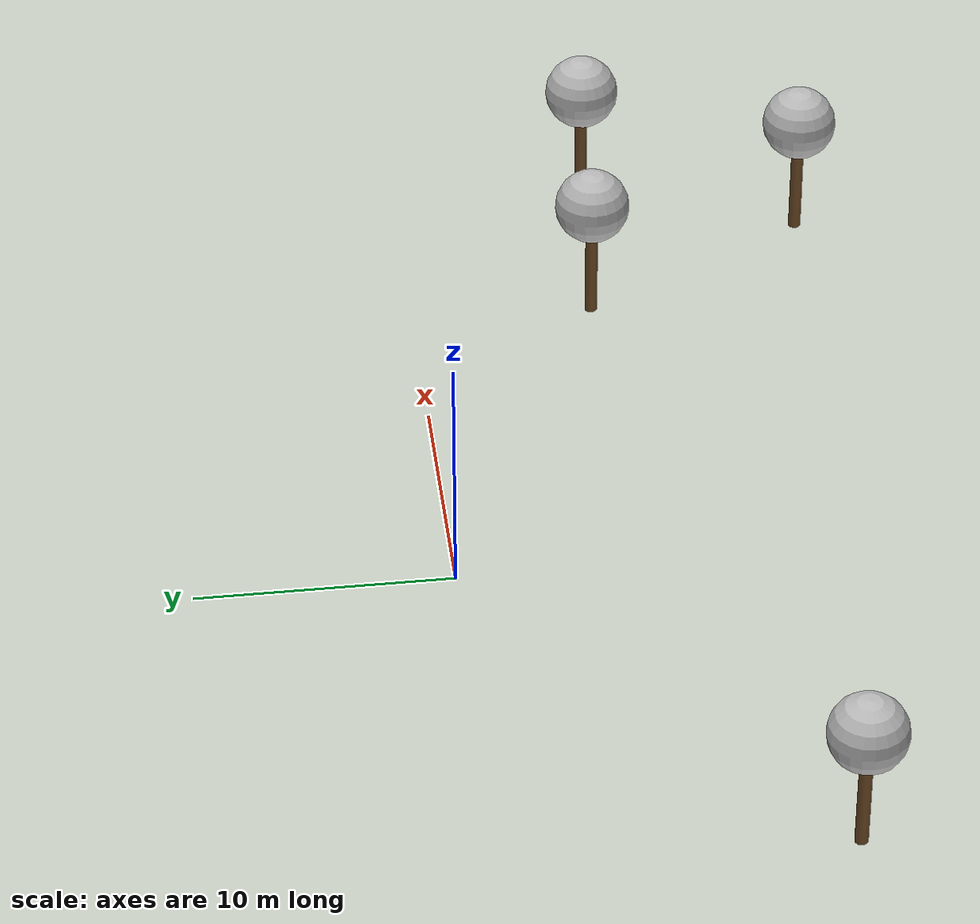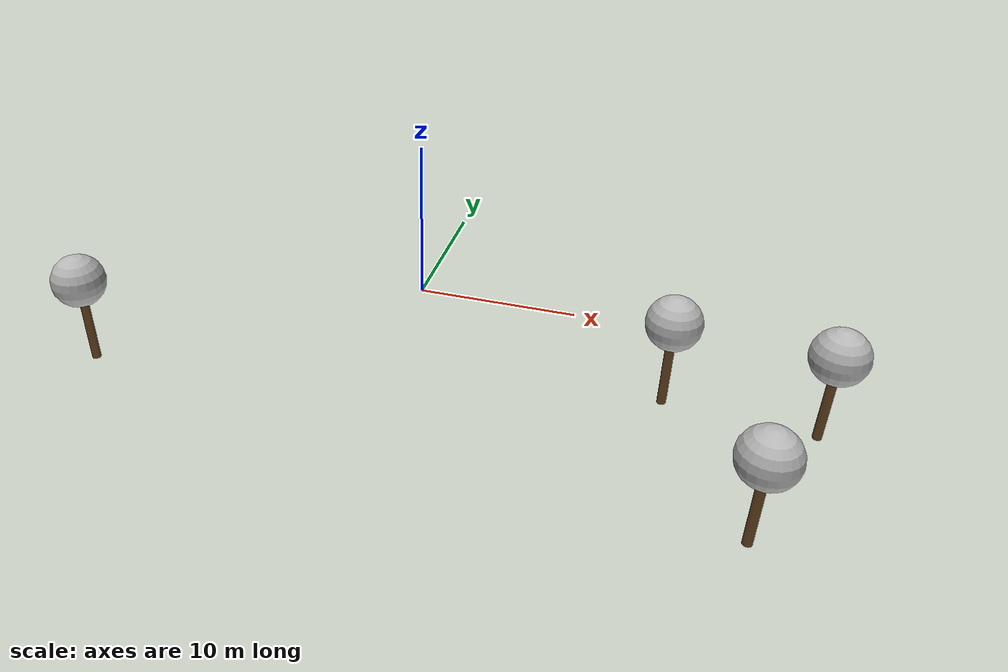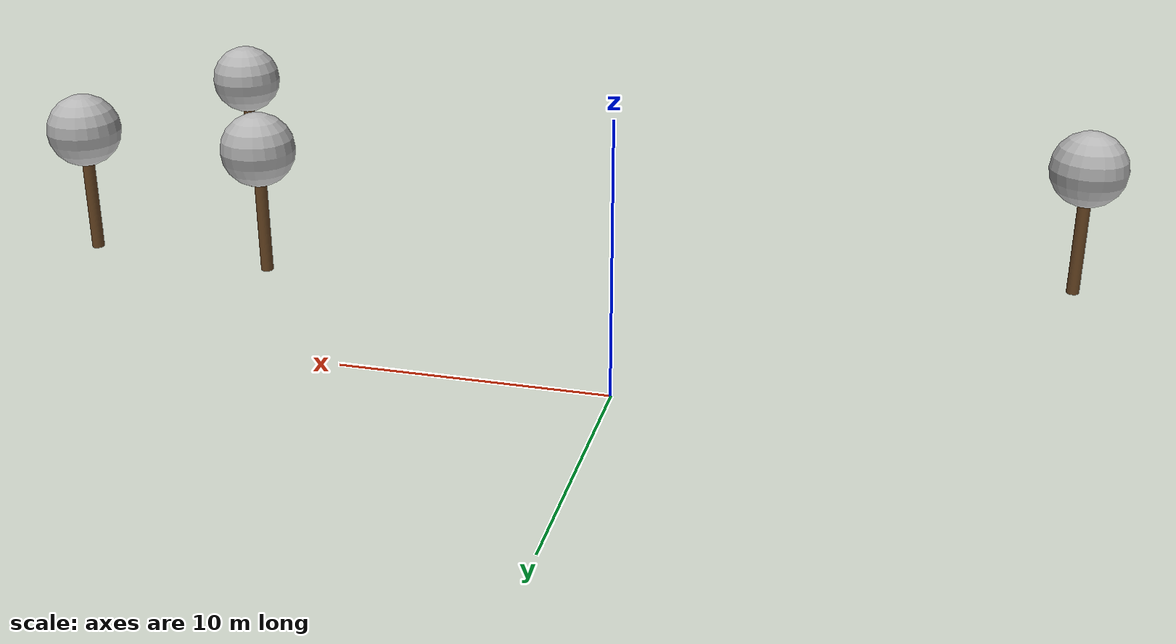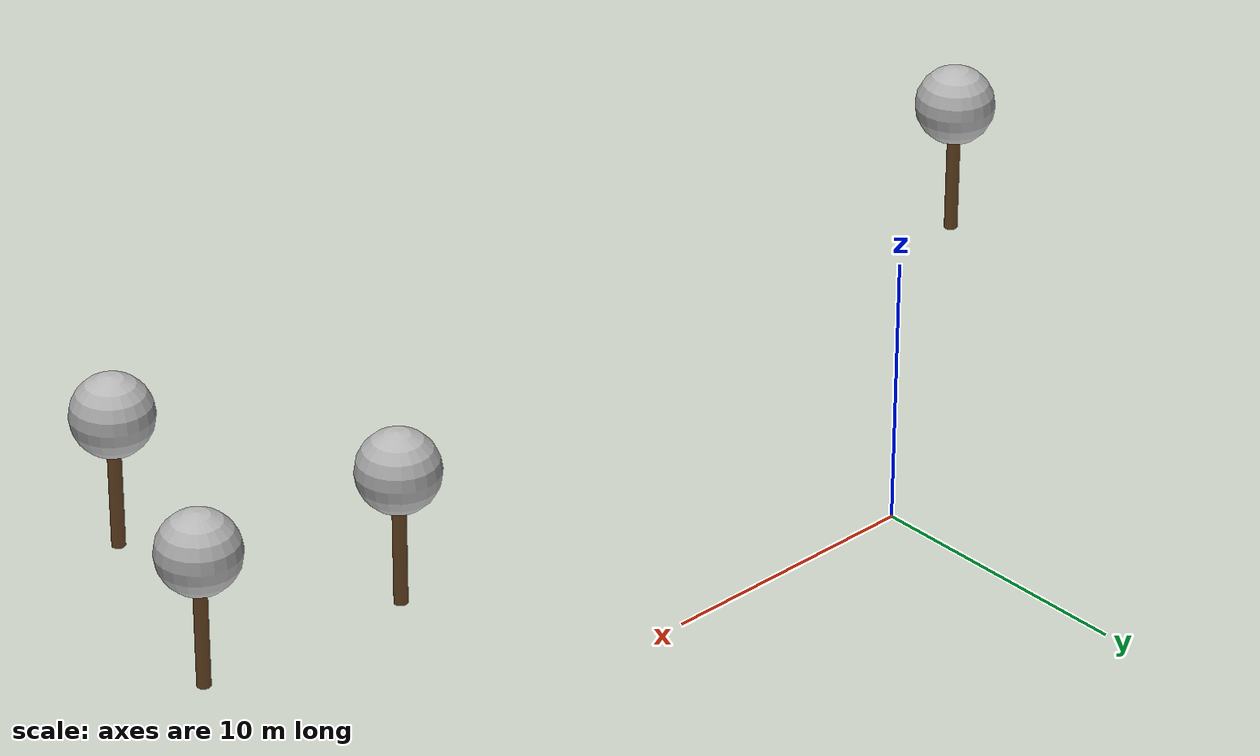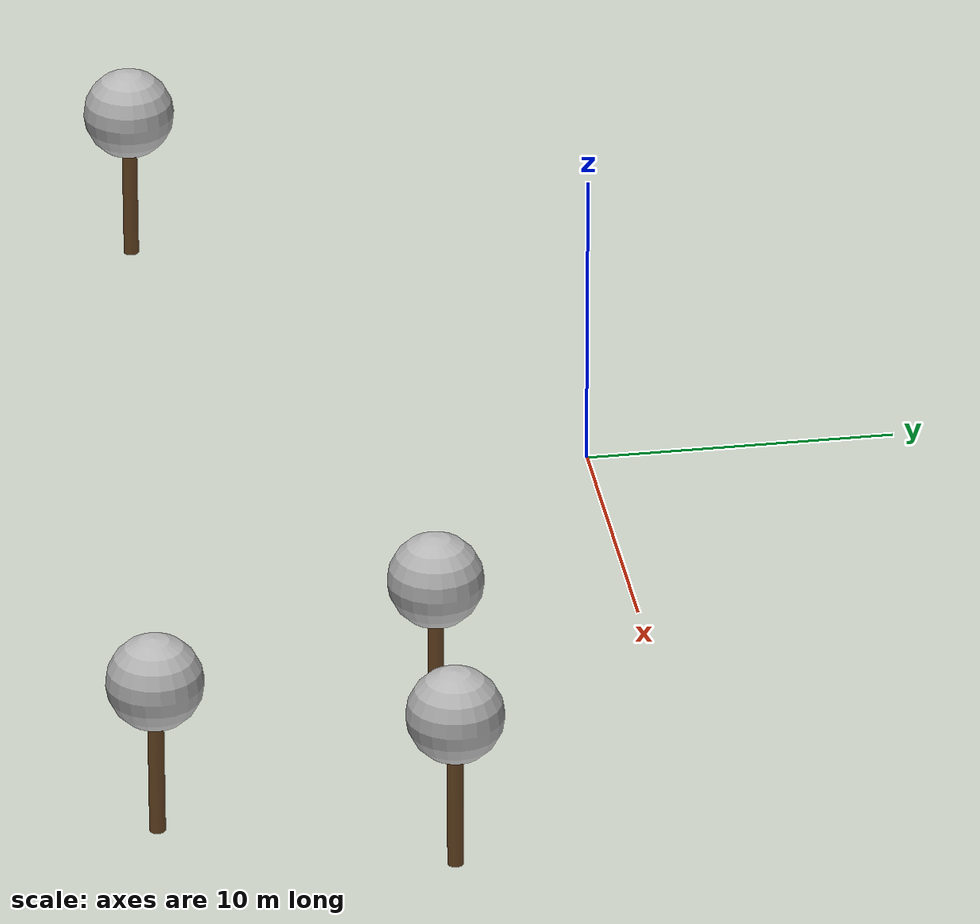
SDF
<sdf version="1.7">
 <world name="default">
  <model name="tree_simple_0_clone_0_clone_clone_4">
   <static>1</static>
   <link name="link">
    <pose>0 0 0.1 0 -0 0</pose>
    <inertial>
     <mass>666</mass>
     <inertia>
      <ixx>0.0861167</ixx>
      <ixy>0</ixy>
      <ixz>0</ixz>
      <iyy>0.0861167</iyy>
      <iyz>0</iyz>
      <izz>0.0861167</izz>
     </inertia>
    </inertial>
    <collision name="collision_trunk">
     <pose>0 0 2 0 -0 0</pose>
     <geometry><cylinder><radius>0.25</radius><length>4</length></cylinder></geometry>
     <surface>
      <contact>
       <poissons_ratio>0.347</poissons_ratio>
       <elastic_modulus>8.8e+09</elastic_modulus>
       <ode><kp>100000</kp><kd>100</kd><max_vel>100</max_vel><min_depth>0.001</min_depth></ode>
      </contact>
      <friction>
       <torsional>
        <coefficient>1</coefficient>
        <use_patch_radius>0</use_patch_radius>
        <surface_radius>0.01</surface_radius>
       </torsional>
      </friction>
     </surface>
    </collision>
    <collision name="collision_treetop">
     <pose>0 0 5.2 0 -0 0</pose>
     <geometry><sphere><radius>1.5</radius></sphere></geometry>
     <surface>
      <contact>
       <poissons_ratio>0.347</poissons_ratio>
       <elastic_modulus>8.8e+09</elastic_modulus>
       <ode><kp>100000</kp><kd>100</kd><max_vel>100</max_vel><min_depth>0.001</min_depth></ode>
      </contact>
      <friction>
       <torsional>
        <coefficient>1</coefficient>
        <use_patch_radius>0</use_patch_radius>
        <surface_radius>0.01</surface_radius>
       </torsional>
      </friction>
     </surface>
    </collision>
    <visual name="trunk">
     <pose>0 0 2 0 -0 0</pose>
     <geometry><cylinder><radius>0.25</radius><length>4</length></cylinder></geometry>
     <material>
      <script>
       <uri>model://tree_simple/scripts</uri>
       <uri>model://tree_simple/materials/textures</uri>
       <name>TreeSimple/Trunk</name>
      </script>
     </material>
    </visual>
    <visual name="treetop">
     <pose>0 0 5.2 0 -0 0</pose>
     <geometry><sphere><radius>1.5</radius></sphere></geometry>
     <material>
      <script>
       <uri>model://tree_simple/scripts</uri>
       <uri>model://tree_simple/materials/textures</uri>
       <name>TreeSimple/Treetop</name>
      </script>
     </material>
    </visual>
   </link>
   <pose>20.868 -16.5442 0 0 -0 0</pose>
  </model>
  <model name="tree_simple_0_clone_0_clone_clone_9">
   <static>1</static>
   <link name="link">
    <pose>0 0 0.1 0 -0 0</pose>
    <inertial>
     <mass>666</mass>
     <inertia>
      <ixx>0.0861167</ixx>
      <ixy>0</ixy>
      <ixz>0</ixz>
      <iyy>0.0861167</iyy>
      <iyz>0</iyz>
      <izz>0.0861167</izz>
     </inertia>
    </inertial>
    <collision name="collision_trunk">
     <pose>0 0 2 0 -0 0</pose>
     <geometry><cylinder><radius>0.25</radius><length>4</length></cylinder></geometry>
     <surface>
      <contact>
       <poissons_ratio>0.347</poissons_ratio>
       <elastic_modulus>8.8e+09</elastic_modulus>
       <ode><kp>100000</kp><kd>100</kd><max_vel>100</max_vel><min_depth>0.001</min_depth></ode>
      </contact>
      <friction>
       <torsional>
        <coefficient>1</coefficient>
        <use_patch_radius>0</use_patch_radius>
        <surface_radius>0.01</surface_radius>
       </torsional>
      </friction>
     </surface>
    </collision>
    <collision name="collision_treetop">
     <pose>0 0 5.2 0 -0 0</pose>
     <geometry><sphere><radius>1.5</radius></sphere></geometry>
     <surface>
      <contact>
       <poissons_ratio>0.347</poissons_ratio>
       <elastic_modulus>8.8e+09</elastic_modulus>
       <ode><kp>100000</kp><kd>100</kd><max_vel>100</max_vel><min_depth>0.001</min_depth></ode>
      </contact>
      <friction>
       <torsional>
        <coefficient>1</coefficient>
        <use_patch_radius>0</use_patch_radius>
        <surface_radius>0.01</surface_radius>
       </torsional>
      </friction>
     </surface>
    </collision>
    <visual name="trunk">
     <pose>0 0 2 0 -0 0</pose>
     <geometry><cylinder><radius>0.25</radius><length>4</length></cylinder></geometry>
     <material>
      <script>
       <uri>model://tree_simple/scripts</uri>
       <uri>model://tree_simple/materials/textures</uri>
       <name>TreeSimple/Trunk</name>
      </script>
     </material>
    </visual>
    <visual name="treetop">
     <pose>0 0 5.2 0 -0 0</pose>
     <geometry><sphere><radius>1.5</radius></sphere></geometry>
     <material>
      <script>
       <uri>model://tree_simple/scripts</uri>
       <uri>model://tree_simple/materials/textures</uri>
       <name>TreeSimple/Treetop</name>
      </script>
     </material>
    </visual>
   </link>
   <pose>-15.9854 -12.7922 0 0 -0 0</pose>
  </model>
  <model name="tree_simple_0_clone_0_clone_clone_2_clone">
   <static>1</static>
   <link name="link">
    <pose>0 0 0.1 0 -0 0</pose>
    <inertial>
     <mass>666</mass>
     <inertia>
      <ixx>0.0861167</ixx>
      <ixy>0</ixy>
      <ixz>0</ixz>
      <iyy>0.0861167</iyy>
      <iyz>0</iyz>
      <izz>0.0861167</izz>
     </inertia>
    </inertial>
    <collision name="collision_trunk">
     <pose>0 0 2 0 -0 0</pose>
     <geometry><cylinder><radius>0.25</radius><length>4</length></cylinder></geometry>
     <surface>
      <contact>
       <poissons_ratio>0.347</poissons_ratio>
       <elastic_modulus>8.8e+09</elastic_modulus>
       <ode><kp>100000</kp><kd>100</kd><max_vel>100</max_vel><min_depth>0.001</min_depth></ode>
      </contact>
      <friction>
       <torsional>
        <coefficient>1</coefficient>
        <use_patch_radius>0</use_patch_radius>
        <surface_radius>0.01</surface_radius>
       </torsional>
      </friction>
     </surface>
    </collision>
    <collision name="collision_treetop">
     <pose>0 0 5.2 0 -0 0</pose>
     <geometry><sphere><radius>1.5</radius></sphere></geometry>
     <surface>
      <contact>
       <poissons_ratio>0.347</poissons_ratio>
       <elastic_modulus>8.8e+09</elastic_modulus>
       <ode><kp>100000</kp><kd>100</kd><max_vel>100</max_vel><min_depth>0.001</min_depth></ode>
      </contact>
      <friction>
       <torsional>
        <coefficient>1</coefficient>
        <use_patch_radius>0</use_patch_radius>
        <surface_radius>0.01</surface_radius>
       </torsional>
      </friction>
     </surface>
    </collision>
    <visual name="trunk">
     <pose>0 0 2 0 -0 0</pose>
     <geometry><cylinder><radius>0.25</radius><length>4</length></cylinder></geometry>
     <material>
      <script>
       <uri>model://tree_simple/scripts</uri>
       <uri>model://tree_simple/materials/textures</uri>
       <name>TreeSimple/Trunk</name>
      </script>
     </material>
    </visual>
    <visual name="treetop">
     <pose>0 0 5.2 0 -0 0</pose>
     <geometry><sphere><radius>1.5</radius></sphere></geometry>
     <material>
      <script>
       <uri>model://tree_simple/scripts</uri>
       <uri>model://tree_simple/materials/textures</uri>
       <name>TreeSimple/Treetop</name>
      </script>
     </material>
    </visual>
   </link>
   <pose>16.1026 -7.30516 0 0 -0 0</pose>
  </model>
  <model name="tree_simple_0_clone_0_clone_clone_2_clone_0">
   <static>1</static>
   <link name="link">
    <pose>0 0 0.1 0 -0 0</pose>
    <inertial>
     <mass>666</mass>
     <inertia>
      <ixx>0.0861167</ixx>
      <ixy>0</ixy>
      <ixz>0</ixz>
      <iyy>0.0861167</iyy>
      <iyz>0</iyz>
      <izz>0.0861167</izz>
     </inertia>
    </inertial>
    <collision name="collision_trunk">
     <pose>0 0 2 0 -0 0</pose>
     <geometry><cylinder><radius>0.25</radius><length>4</length></cylinder></geometry>
     <surface>
      <contact>
       <poissons_ratio>0.347</poissons_ratio>
       <elastic_modulus>8.8e+09</elastic_modulus>
       <ode><kp>100000</kp><kd>100</kd><max_vel>100</max_vel><min_depth>0.001</min_depth></ode>
      </contact>
      <friction>
       <torsional>
        <coefficient>1</coefficient>
        <use_patch_radius>0</use_patch_radius>
        <surface_radius>0.01</surface_radius>
       </torsional>
      </friction>
     </surface>
    </collision>
    <collision name="collision_treetop">
     <pose>0 0 5.2 0 -0 0</pose>
     <geometry><sphere><radius>1.5</radius></sphere></geometry>
     <surface>
      <contact>
       <poissons_ratio>0.347</poissons_ratio>
       <elastic_modulus>8.8e+09</elastic_modulus>
       <ode><kp>100000</kp><kd>100</kd><max_vel>100</max_vel><min_depth>0.001</min_depth></ode>
      </contact>
      <friction>
       <torsional>
        <coefficient>1</coefficient>
        <use_patch_radius>0</use_patch_radius>
        <surface_radius>0.01</surface_radius>
       </torsional>
      </friction>
     </surface>
    </collision>
    <visual name="trunk">
     <pose>0 0 2 0 -0 0</pose>
     <geometry><cylinder><radius>0.25</radius><length>4</length></cylinder></geometry>
     <material>
      <script>
       <uri>model://tree_simple/scripts</uri>
       <uri>model://tree_simple/materials/textures</uri>
       <name>TreeSimple/Trunk</name>
      </script>
     </material>
    </visual>
    <visual name="treetop">
     <pose>0 0 5.2 0 -0 0</pose>
     <geometry><sphere><radius>1.5</radius></sphere></geometry>
     <material>
      <script>
       <uri>model://tree_simple/scripts</uri>
       <uri>model://tree_simple/materials/textures</uri>
       <name>TreeSimple/Treetop</name>
      </script>
     </material>
    </visual>
   </link>
   <pose>24.1579 -7.91423 0 0 -0 0</pose>
  </model>
 </world>
</sdf>
